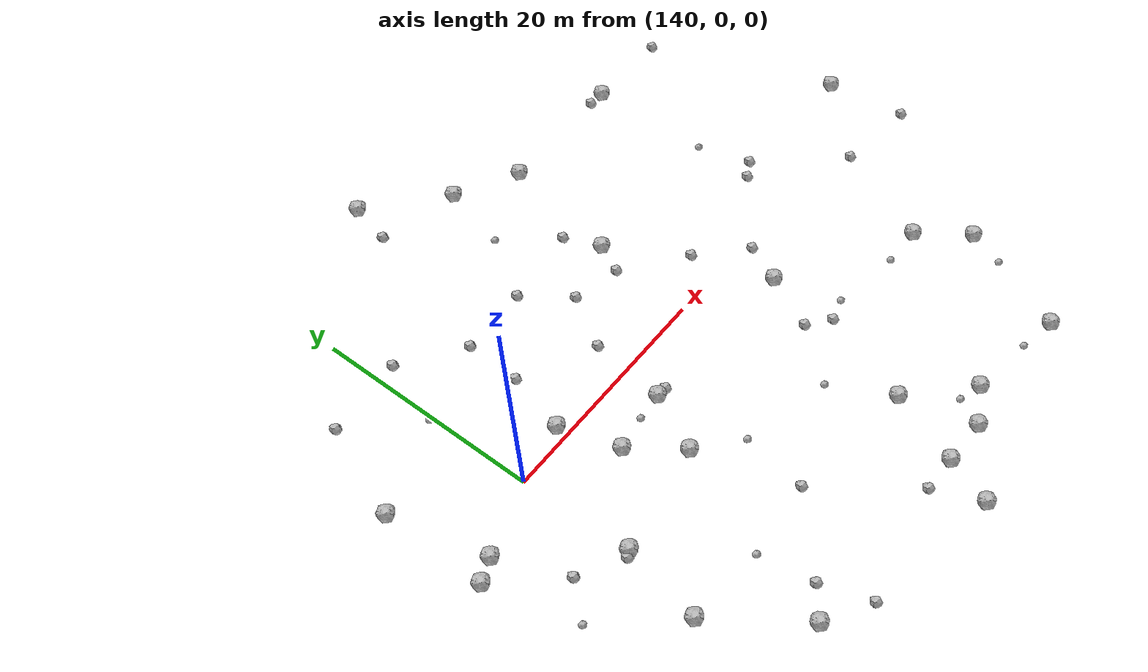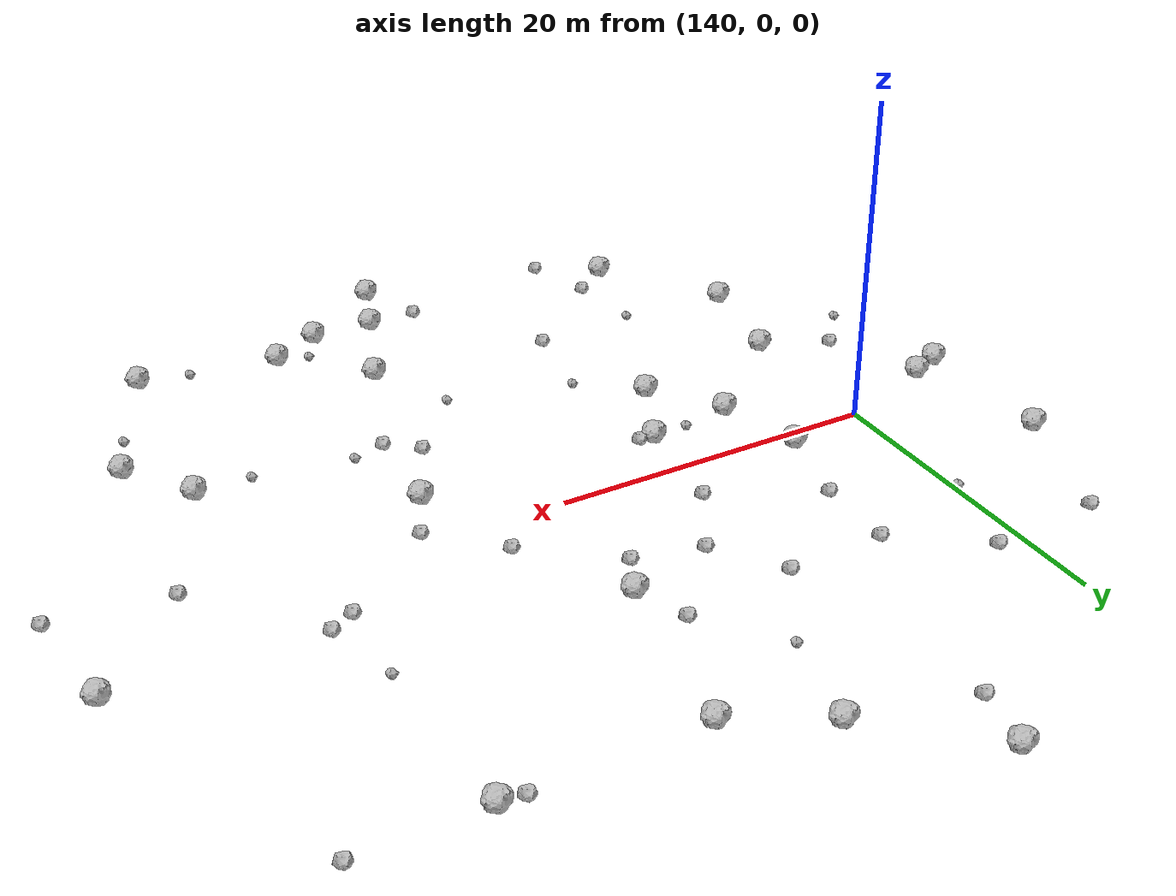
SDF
<sdf version="1.6">
 <world name="default">
  <include><uri>model://sun</uri></include>
  <model name="rock1_4_2">
   <include><uri>model://rock1</uri><pose>163.53086647609945 -18.5701309439241 0.5 0 0 0</pose></include>
  </model>
  <model name="rock1_4_3">
   <include><uri>model://rock1</uri><pose>187.68099686439226 4.073669306079033 0.5 0 0 0</pose></include>
  </model>
  <model name="rock1_4_4">
   <include><uri>model://rock1</uri><pose>151.44344222281143 28.17523054371715 0.5 0 0 0</pose></include>
  </model>
  <model name="rock1_4_5">
   <include><uri>model://rock1</uri><pose>152.16556657509756 -3.4888635599212883 0.5 0 0 0</pose></include>
  </model>
  <model name="rock1_4_6">
   <include><uri>model://rock1</uri><pose>140.36050318973298 -9.916053251796747 0.5 0 0 0</pose></include>
  </model>
  <model name="rock1_4_7">
   <include><uri>model://rock1</uri><pose>145.21797834627552 1.040367785390135 0.5 0 0 0</pose></include>
  </model>
  <model name="rock1_4_8">
   <include><uri>model://rock1</uri><pose>160.93429694876062 9.175710928904564 0.5 0 0 0</pose></include>
  </model>
  <model name="rock1_4_9">
   <include><uri>model://rock1</uri><pose>159.66816878545103 -28.891136181240945 0.5 0 0 0</pose></include>
  </model>
  <model name="rock1_4_10">
   <include><uri>model://rock1</uri><pose>177.84530993667025 -10.864096799218764 0.5 0 0 0</pose></include>
  </model>
  <model name="rock1_4_11">
   <include><uri>model://rock1</uri><pose>168.21156869980945 -23.218214058553862 0.5 0 0 0</pose></include>
  </model>
  <model name="rock1_4_12">
   <include><uri>model://rock1</uri><pose>149.79897387133718 -8.408322347498192 0.5 0 0 0</pose></include>
  </model>
  <model name="rock1_4_13">
   <include><uri>model://rock1</uri><pose>176.82077481782926 -24.654809895734502 0.5 0 0 0</pose></include>
  </model>
  <model name="rock1_4_14">
   <include><uri>model://rock1</uri><pose>162.8213060484302 19.818594313705 0.5 0 0 0</pose></include>
  </model>
  <model name="rock1_4_15">
   <include><uri>model://rock1</uri><pose>146.7711481581699 -4.187960548595527 0.5 0 0 0</pose></include>
  </model>
  <model name="rock1_4_16">
   <include><uri>model://rock1</uri><pose>133.7280073311625 -2.1528870615595217 0.5 0 0 0</pose></include>
  </model>
  <model name="rock1_4_17">
   <include><uri>model://rock1</uri><pose>131.65539612393962 6.341773507943117 0.5 0 0 0</pose></include>
  </model>
  <model name="rock1_4_18">
   <include><uri>model://rock1</uri><pose>174.30834640609316 19.887092955729123 0.5 0 0 0</pose></include>
  </model>
  <model name="rock1_4_19">
   <include><uri>model://rock1</uri><pose>144.06555347436634 -24.355503808459787 0.5 0 0 0</pose></include>
  </model>
  <model name="rock1_4_20">
   <include><uri>model://rock1</uri><pose>180.75036857945256 -15.035140157253192 0.5 0 0 0</pose></include>
  </model>
  <model name="rock1_4_21">
   <include><uri>model://rock1</uri><pose>165.0768145497188 -24.917188700122914 0.5 0 0 0</pose></include>
  </model>
  <model name="rock1_4_22">
   <include><uri>model://rock1</uri><pose>166.91610472209814 -4.247647601373174 0.5 0 0 0</pose></include>
  </model>
  <model name="rock1_4_23">
   <include><uri>model://rock1</uri><pose>138.9503506001531 -16.97651725272611 0.5 0 0 0</pose></include>
  </model>
  <model name="rock1_4_24">
   <include><uri>model://rock1</uri><pose>157.56107666985878 22.73139725587199 0.5 0 0 0</pose></include>
  </model>
  <model name="rock1_4_25">
   <include><uri>model://rock1</uri><pose>161.14928892834766 -24.83239449506621 0.5 0 0 0</pose></include>
  </model>
  <model name="rock1_4_26">
   <include><uri>model://rock1</uri><pose>131.73338260913306 -2.9978328832760113 0.5 0 0 0</pose></include>
  </model>
  <model name="rock2_4_0">
   <include><uri>model://rock2</uri><pose>172.83814478426726 20.03178058410969 0.3 0 0 0</pose></include>
  </model>
  <model name="rock2_4_1">
   <include><uri>model://rock2</uri><pose>166.48733732410386 -10.395679616110282 0.3 0 0 0</pose></include>
  </model>
  <model name="rock2_4_2">
   <include><uri>model://rock2</uri><pose>141.6284126758328 15.07964869959281 0.3 0 0 0</pose></include>
  </model>
  <model name="rock2_4_3">
   <include><uri>model://rock2</uri><pose>146.57113543702076 6.4536610080922046 0.3 0 0 0</pose></include>
  </model>
  <model name="rock2_4_4">
   <include><uri>model://rock2</uri><pose>134.6721763290897 14.585906122606161 0.3 0 0 0</pose></include>
  </model>
  <model name="rock2_4_5">
   <include><uri>model://rock2</uri><pose>155.56481824862442 7.655111452921808 0.3 0 0 0</pose></include>
  </model>
  <model name="rock2_4_6">
   <include><uri>model://rock2</uri><pose>181.67130581505774 -1.9755981485455294 0.3 0 0 0</pose></include>
  </model>
  <model name="rock2_4_7">
   <include><uri>model://rock2</uri><pose>146.4615167630838 -22.409182747428552 0.3 0 0 0</pose></include>
  </model>
  <model name="rock2_4_8">
   <include><uri>model://rock2</uri><pose>164.65134650942827 -8.853323904757445 0.3 0 0 0</pose></include>
  </model>
  <model name="rock2_4_9">
   <include><uri>model://rock2</uri><pose>181.6074621272163 19.88690504381026 0.3 0 0 0</pose></include>
  </model>
  <model name="rock2_4_10">
   <include><uri>model://rock2</uri><pose>188.53566576307662 -2.825564626445974 0.3 0 0 0</pose></include>
  </model>
  <model name="rock2_4_11">
   <include><uri>model://rock2</uri><pose>150.52052662944143 24.525507386308334 0.3 0 0 0</pose></include>
  </model>
  <model name="rock2_4_12">
   <include><uri>model://rock2</uri><pose>159.67335472966616 12.407896282858836 0.3 0 0 0</pose></include>
  </model>
  <model name="rock2_4_13">
   <include><uri>model://rock2</uri><pose>157.9972705683803 -24.811173127942816 0.3 0 0 0</pose></include>
  </model>
  <model name="rock2_4_14">
   <include><uri>model://rock2</uri><pose>168.40557546624325 -0.928042140601125 0.3 0 0 0</pose></include>
  </model>
  <model name="rock2_4_15">
   <include><uri>model://rock2</uri><pose>152.9447018999649 3.2216266175246204 0.3 0 0 0</pose></include>
  </model>
  <model name="rock2_4_16">
   <include><uri>model://rock2</uri><pose>152.76798181018557 11.578818488847006 0.3 0 0 0</pose></include>
  </model>
  <model name="rock2_4_17">
   <include><uri>model://rock2</uri><pose>146.73086493655066 11.37559138322753 0.3 0 0 0</pose></include>
  </model>
  <model name="rock2_4_18">
   <include><uri>model://rock2</uri><pose>139.7502319411184 -10.183281765956497 0.3 0 0 0</pose></include>
  </model>
  <model name="rock2_4_19">
   <include><uri>model://rock2</uri><pose>152.35224467379476 -17.047948857327953 0.3 0 0 0</pose></include>
  </model>
  <model name="rock2_4_20">
   <include><uri>model://rock2</uri><pose>159.69171398333526 6.7023671308215 0.3 0 0 0</pose></include>
  </model>
  <model name="rock2_4_21">
   <include><uri>model://rock2</uri><pose>175.8930371749318 4.725244330037512 0.3 0 0 0</pose></include>
  </model>
  <model name="rock2_4_22">
   <include><uri>model://rock2</uri><pose>153.05543050094502 -3.527493573133448 0.3 0 0 0</pose></include>
  </model>
  <model name="rock2_4_23">
   <include><uri>model://rock2</uri><pose>147.8151342390659 -26.701129392117412 0.3 0 0 0</pose></include>
  </model>
  <model name="rock2_4_24">
   <include><uri>model://rock2</uri><pose>164.71350051417448 2.6850631668550804 0.3 0 0 0</pose></include>
  </model>
  <model name="rock2_4_25">
   <include><uri>model://rock2</uri><pose>136.13482592214893 -8.024887709178895 0.3 0 0 0</pose></include>
  </model>
  <model name="rock2_4_26">
   <include><uri>model://rock2</uri><pose>174.42063877822534 3.89869835244928 0.3 0 0 0</pose></include>
  </model>
  <model name="rock3_4_0">
   <include><uri>model://rock3</uri><pose>153.22221185903823 -11.401297853865707 0.2 0 0 0</pose></include>
  </model>
  <model name="rock3_4_1">
   <include><uri>model://rock3</uri><pose>166.2430511489223 -22.6156080040692 0.2 0 0 0</pose></include>
  </model>
  <model name="rock3_4_2">
   <include><uri>model://rock3</uri><pose>133.66899782252014 -10.91212463724046 0.2 0 0 0</pose></include>
  </model>
  <model name="rock3_4_3">
   <include><uri>model://rock3</uri><pose>149.7312914258668 -3.6809037631378274 0.2 0 0 0</pose></include>
  </model>
  <model name="rock3_4_4">
   <include><uri>model://rock3</uri><pose>179.62043899628958 -18.188289810342724 0.2 0 0 0</pose></include>
  </model>
  <model name="rock3_4_5">
   <include><uri>model://rock3</uri><pose>156.01300564876792 16.790491437614996 0.2 0 0 0</pose></include>
  </model>
  <model name="rock3_4_6">
   <include><uri>model://rock3</uri><pose>174.37929464452876 -10.879096053560353 0.2 0 0 0</pose></include>
  </model>
  <model name="rock3_4_7">
   <include><uri>model://rock3</uri><pose>145.6992221470682 -17.62979337526527 0.2 0 0 0</pose></include>
  </model>
  <model name="rock3_4_8">
   <include><uri>model://rock3</uri><pose>173.62035048040948 -24.066266677764578 0.2 0 0 0</pose></include>
  </model>
  <model name="rock3_4_9">
   <include><uri>model://rock3</uri><pose>168.4468905852727 -9.874984458315893 0.2 0 0 0</pose></include>
  </model>
  <model name="rock3_4_10">
   <include><uri>model://rock3</uri><pose>174.60173487489664 9.248785409539472 0.2 0 0 0</pose></include>
  </model>
  <model name="rock3_4_11">
   <include><uri>model://rock3</uri><pose>139.6961059700995 9.343192507587645 0.2 0 0 0</pose></include>
  </model>
  <model name="rock3_4_12">
   <include><uri>model://rock3</uri><pose>160.92081887322658 -13.351679402932067 0.2 0 0 0</pose></include>
  </model>
 </world>
</sdf>
